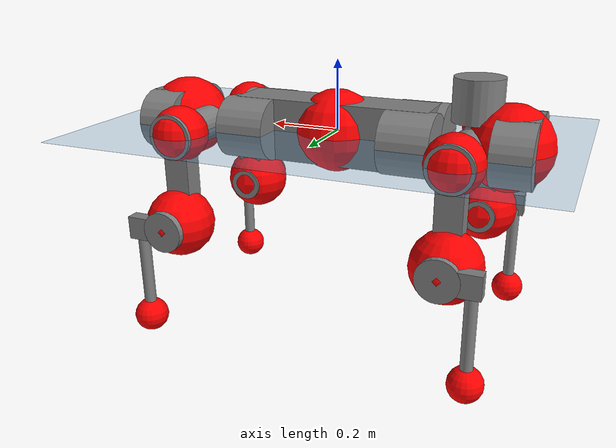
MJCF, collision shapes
<mujoco model="anymal_c">
  <compiler angle="radian" assetdir="assets" balanceinertia="true" inertiafromgeom="false"/>

  <option timestep="0.005" density="1.2" viscosity="2e-05"/>

  <size nkey="1"/>

  <visual>
    <quality shadowsize="8192"/>
    <map shadowclip="0.5"/>
  </visual>

  <default>
    <default class="/">
      <material specular="0" shininess="0.25"/>
      <geom contype="0" conaffinity="0" group="1" solref="-1000 -80"/>
      <site size="0.01 0.005 0.005" group="5"/>
      <general forcelimited="true" forcerange="-80 80" biastype="affine" gainprm="80" biasprm="0 -80 -2"/>
      <default class="anymal_c">
        <joint armature="0.01" damping="0.01" frictionloss="0.1"/>
        <default class="visual">
          <geom type="mesh" group="2"/>
          <default class="visual_zflip"/>
        </default>
        <default class="collision">
          <geom type="cylinder" group="3"/>
          <default class="foot">
            <geom size="0.03 0 0" type="sphere" condim="6" priority="1" friction="0.8 0.02 0.01" solimp="0.015 1 0.03"/>
          </default>
        </default>
      </default>
      <default class="reward_collision_sphere">
        <geom group="5" rgba="1 0 0 1"/>
      </default>
    </default>
  </default>

  <asset>
    <texture type="skybox" colorspace="auto" name="//unnamed_texture_0" builtin="gradient" rgb1="0.95 0.95 0.95" rgb2="0.95 0.95 0.95" width="100" height="600"/>
    <texture type="2d" colorspace="auto" name="texplane" builtin="checker" rgb1="0.345 0.575 0.748" rgb2="0.345 0.575 0.748" markrgb="1 1 1" width="512" height="512"/>
    <texture type="2d" colorspace="linear" name="base" file="base.png"/>
    <texture type="2d" colorspace="linear" name="top_shell" file="top_shell.png"/>
    <texture type="2d" colorspace="linear" name="bottom_shell" file="bottom_shell.png"/>
    <texture type="2d" colorspace="linear" name="remote" file="remote.png"/>
    <texture type="2d" colorspace="linear" name="hatch" file="hatch.png"/>
    <texture type="2d" colorspace="linear" name="handle" file="handle.png"/>
    <texture type="2d" colorspace="linear" name="face" file="face.png"/>
    <texture type="2d" colorspace="linear" name="battery" file="battery.png"/>
    <texture type="2d" colorspace="linear" name="lidar_cage" file="lidar_cage.png"/>
    <texture type="2d" colorspace="linear" name="depth_camera" file="depth_camera.png"/>
    <texture type="2d" colorspace="linear" name="wide_angle_camera" file="wide_angle_camera.png"/>
    <texture type="2d" colorspace="linear" name="lidar" file="lidar.png"/>
    <texture type="2d" colorspace="linear" name="drive" file="drive.png"/>
    <texture type="2d" colorspace="linear" name="hip_l" file="hip_l.png"/>
    <texture type="2d" colorspace="linear" name="shank_l" file="shank_l.png"/>
    <texture type="2d" colorspace="linear" name="foot" file="foot.png"/>
    <texture type="2d" colorspace="linear" name="thigh" file="thigh.png"/>
    <texture type="2d" colorspace="linear" name="shank_r" file="shank_r.png"/>
    <texture type="2d" colorspace="linear" name="hip_r" file="hip_r.png"/>
    <material name="MatPlane" class="/" texture="texplane" texuniform="true" texrepeat="2 2" specular="0.9" shininess="0.5"/>
    <material name="black_plastic" class="/" rgba="0.007 0.007 0.007 1"/>
    <material name="green" class="/" rgba="0.052 0.178 0.033 1"/>
    <material name="red" class="/" rgba="0.178 0.006 0.005 1"/>
    <material name="yellow" class="/" rgba="0.178 0.119 0.006 1"/>
    <material name="lwl" class="/" rgba="0.8 0.8 0.8 1"/>
    <material name="base" class="/" texture="base"/>
    <material name="top_shell" class="/" texture="top_shell"/>
    <material name="bottom_shell" class="/" texture="bottom_shell"/>
    <material name="hip_l" class="/" texture="hip_l"/>
    <material name="thigh" class="/" texture="thigh"/>
    <material name="shank_l" class="/" texture="shank_l"/>
    <material name="foot" class="/" texture="foot"/>
    <material name="hip_r" class="/" texture="hip_r"/>
    <material name="shank" class="/" texture="shank_r"/>
    <material name="hatch" class="/" texture="hatch"/>
    <material name="remote" class="/" texture="remote"/>
    <material name="handle" class="/" texture="handle"/>
    <material name="face" class="/" texture="face"/>
    <material name="depth_camera" class="/" texture="depth_camera"/>
    <material name="wide_angle_camera" class="/" texture="wide_angle_camera"/>
    <material name="battery" class="/" texture="battery"/>
    <material name="lidar_cage" class="/" texture="lidar_cage"/>
    <material name="lidar" class="/" texture="lidar"/>
    <material name="drive" class="/" texture="drive"/>
    <mesh name="base_0" class="/" file="base_0.obj"/>
    <mesh name="base_1" class="/" file="base_1.obj"/>
    <mesh name="base_2" class="/" file="base_2.obj"/>
    <mesh name="base_3" class="/" file="base_3.obj"/>
    <mesh name="base_4" class="/" file="base_4.obj"/>
    <mesh name="base_5" class="/" file="base_5.obj"/>
    <mesh name="top_shell" class="/" file="top_shell.obj"/>
    <mesh name="bottom_shell" class="/" file="bottom_shell.obj"/>
    <mesh name="remote" class="/" file="remote.obj"/>
    <mesh name="handle" class="/" file="handle.obj"/>
    <mesh name="face" class="/" file="face.obj"/>
    <mesh name="wide_angle_camera" class="/" file="wide_angle_camera.obj"/>
    <mesh name="depth_camera" class="/" file="depth_camera.obj"/>
    <mesh name="battery" class="/" file="battery.obj"/>
    <mesh name="lidar_cage" class="/" file="lidar_cage.obj"/>
    <mesh name="lidar" class="/" file="lidar.obj"/>
    <mesh name="drive" class="/" file="drive.obj"/>
    <mesh name="hip_l" class="/" file="hip_l.obj"/>
    <mesh name="thigh" class="/" file="thigh.obj"/>
    <mesh name="shank_l" class="/" file="shank_l.obj"/>
    <mesh name="foot" class="/" file="foot.obj"/>
    <mesh name="hip_r" class="/" file="hip_r.obj"/>
    <mesh name="hatch" class="/" file="hatch.obj"/>
    <mesh name="shank_r" class="/" file="shank_r.obj"/>
  </asset>

  <worldbody>
    <geom name="floor" class="/" size="100 100 0.125" type="plane" group="0" material="MatPlane"/>
    <light name="toplight_shadow" class="/" pos="0 0 5" dir="0.0990148 0.0990148 -0.990148" type="directional" ambient="0.04 0.04 0.04" diffuse="0.55 0.55 0.55" specular="0.12 0.12 0.12"/>
    <light name="toplight_fill" class="/" pos="0 0 5" dir="0.0990148 0.0990148 -0.990148" type="directional" castshadow="false" ambient="0.04 0.04 0.04" diffuse="0.3 0.3 0.3" specular="0.08 0.08 0.08"/>
    <body name="trunk" childclass="anymal_c" pos="0.00260488 -0.000507175 -0.000404848" quat="1 4.21469e-05 -0.000520777 0.000103916">
      <inertial pos="0.00263345 0.000641634 0.043899" quat="0.500747 0.498127 0.501604 0.499515" mass="17.6261" diaginertia="1.03274 0.468039 0.127409"/>
      <joint name="//unnamed_joint_0" type="free" armature="0" damping="0" frictionloss="0"/>
      <geom name="//unnamed_geom_1" class="visual" material="green" mesh="base_0"/>
      <geom name="//unnamed_geom_2" class="visual" material="yellow" mesh="base_1"/>
      <geom name="//unnamed_geom_3" class="visual" material="red" mesh="base_2"/>
      <geom name="//unnamed_geom_4" class="visual" material="black_plastic" mesh="base_3"/>
      <geom name="//unnamed_geom_5" class="visual" material="lwl" mesh="base_4"/>
      <geom name="//unnamed_geom_6" class="visual" material="base" mesh="base_5"/>
      <geom name="trunk_1" class="collision" size="0.282635 0.0682222 0.0877142" type="box"/>
      <geom name="trunk_2" class="collision" size="0.0877142 0.0706587" pos="0.23655 0.0656045 0" quat="0.707107 0 0.707107 0"/>
      <geom name="trunk_3" class="collision" size="0.0877142 0.0706587" pos="-0.23655 0.0656045 0" quat="0.707107 0 0.707107 0"/>
      <geom name="trunk_4" class="collision" size="0.0877142 0.0706587" pos="0.23655 -0.0656045 0" quat="0.707107 0 0.707107 0"/>
      <geom name="trunk_5" class="collision" size="0.0877142 0.0706587" pos="-0.23655 -0.0656045 0" quat="0.707107 0 0.707107 0"/>
      <geom name="//unnamed_geom_12" class="visual" material="top_shell" mesh="top_shell"/>
      <geom name="//unnamed_geom_13" class="visual" material="bottom_shell" mesh="bottom_shell"/>
      <geom name="//unnamed_geom_14" class="visual" material="remote" mesh="remote"/>
      <geom name="//unnamed_geom_15" class="visual" material="handle" mesh="handle"/>
      <geom name="//unnamed_geom_16" class="visual" pos="0.450804 0 0" quat="1 0 0 0" material="face" mesh="face"/>
      <geom name="trunk_6" class="collision" size="0.0536031 0.0682222 0.0877142" pos="0.510621 0 0" type="box"/>
      <geom name="//unnamed_geom_18" class="collision" size="0.0877142 0.0536031" pos="0.510621 0.0656045 0" quat="0.707107 0 0.707107 0"/>
      <geom name="//unnamed_geom_19" class="collision" size="0.0877142 0.0536031" pos="0.510621 -0.0656045 0" quat="0.707107 0 0.707107 0"/>
      <geom name="//unnamed_geom_20" class="visual" pos="0.502076 0 -0.0248181" quat="0.965926 0 0.258819 0" material="depth_camera" mesh="depth_camera"/>
      <geom name="//unnamed_geom_21" class="visual" pos="0.557931 0 0.0134583" material="wide_angle_camera" mesh="wide_angle_camera"/>
      <geom name="//unnamed_geom_22" class="visual_zflip" pos="-0.450804 0 0" quat="0 0 0 1" material="face" mesh="face"/>
      <geom name="trunk_7" class="collision" size="0.0536031 0.0682222 0.0877142" pos="-0.510621 0 0" quat="0 0 0 1" type="box"/>
      <geom name="//unnamed_geom_24" class="collision" size="0.0877142 0.0536031" pos="-0.510621 -0.0656045 0" quat="0 -0.707107 0 0.707107"/>
      <geom name="//unnamed_geom_25" class="collision" size="0.0877142 0.0536031" pos="-0.510621 0.0656045 0" quat="0 -0.707107 0 0.707107"/>
      <geom name="//unnamed_geom_26" class="visual" pos="-0.502076 0 -0.0248181" quat="0 -0.258819 0 0.965926" material="depth_camera" mesh="depth_camera"/>
      <geom name="//unnamed_geom_27" class="visual_zflip" pos="-0.557931 0 0.0134583" quat="0 0 0 1" material="wide_angle_camera" mesh="wide_angle_camera"/>
      <geom name="//unnamed_geom_28" class="visual" material="battery" mesh="battery"/>
      <geom name="//unnamed_geom_29" class="visual" pos="0 0.0696777 0.0275495" quat="0.683013 -0.183013 0.183013 0.683013" material="depth_camera" mesh="depth_camera"/>
      <geom name="//unnamed_geom_30" class="visual" pos="0 -0.0696777 0.0275495" quat="0.683013 0.183013 0.183013 -0.683013" material="depth_camera" mesh="depth_camera"/>
      <geom name="//unnamed_geom_31" class="visual" pos="-0.395881 0 0.0660777" quat="1 0 0 0" material="lidar_cage" mesh="lidar_cage"/>
      <geom name="trunk_8" class="collision" size="0.0682222 0.0584762" pos="-0.395881 0 0.120019"/>
      <geom name="//unnamed_geom_33" class="visual" pos="-0.395881 -5.90796e-05 0.12784" quat="0.707107 0 0 -0.707107" material="lidar" mesh="lidar"/>
      <geom name="//unnamed_geom_34" class="visual" pos="0.326167 0.0974559 6.58795e-10" quat="0.258819 0.965926 0 0" material="drive" mesh="drive"/>
      <geom name="//unnamed_geom_35" class="visual" pos="0.326167 -0.0974559 -6.58795e-10" quat="0.258819 -0.965926 0 0" material="drive" mesh="drive"/>
      <geom name="//unnamed_geom_36" class="visual" pos="-0.326167 0.0974559 -6.58795e-10" quat="0 0 0.965926 -0.258819" material="drive" mesh="drive"/>
      <geom name="//unnamed_geom_37" class="visual" pos="-0.326167 -0.0974559 6.58795e-10" quat="0 0 -0.965926 -0.258819" material="drive" mesh="drive"/>
      <geom name="//unnamed_geom_38" class="visual" pos="0.12616 0 0.0656282" quat="1 0 0 0" material="hatch" mesh="hatch"/>
      <geom name="//unnamed_geom_39" class="reward_collision_sphere" size="0.116952"/>
      <geom name="//unnamed_geom_40" class="reward_collision_sphere" size="0.116952" pos="0.489413 0 0"/>
      <geom name="//unnamed_geom_41" class="reward_collision_sphere" size="0.116952" pos="-0.489413 0 0"/>
      <site name="imu" pos="0.265319 0.0098666 0.0280713" size="0.00974603"/>
      <camera name="track" pos="0 -1.87441 0" quat="0.707107 0.707107 0 0" mode="trackcom"/>
      <camera name="ego_camera" pos="0.489413 0 -0.0359606" quat="-0.5 -0.5 0.5 0.5"/>
      <body name="LF_HIP" pos="0.325863 0.0980222 -0.000620646" quat="0.259524 0.965736 -0.000839096 0.000365975">
        <inertial pos="0.0589876 -0.0135358 -0.00710695" quat="-0.127927 0.708995 -0.13425 0.680395" mass="2.58946" diaginertia="0.00896099 0.0034519 0.00192488"/>
        <joint name="LF_HAA" pos="0 0 0" axis="0.999896 -0.00938726 0.0109162" range="-0.725067 0.487333" armature="0.00843342" damping="0.00531801" frictionloss="0.0984627"/>
        <geom name="//unnamed_geom_42" class="visual" pos="0 3.87539e-05 -6.3653e-06" quat="0.258819 -0.965926 0 0" material="hip_l" mesh="hip_l"/>
        <geom name="//unnamed_geom_43" class="visual" pos="0.0651464 -0.0769451 -0.0441418" quat="0.183013 -0.683013 0.683013 0.183013" material="drive" mesh="drive"/>
        <geom name="//unnamed_geom_44" class="collision" size="0.0487301 0.0682222" pos="0.0651463 -0.0112088 -0.00620771" quat="-0.353553 -0.612372 0.612372 -0.353553"/>
        <body name="LF_THIGH" pos="0.0645174 -0.0674726 -0.0386907" quat="0.183057 -0.682976 0.683026 0.183056">
          <inertial pos="0.0332416 0.000230493 -0.223469" quat="0.993168 -0.00508112 -0.0808916 0.0839512" mass="2.89033" diaginertia="0.0467193 0.0218352 0.00246917"/>
          <joint name="LF_HFE" pos="0 0 0" axis="0.999993 -0.00341801 0.00116099" range="-3.15343 3.13695" armature="0.0110047" damping="0.00462881" frictionloss="0.0933666"/>
          <geom name="//unnamed_geom_45" class="visual" pos="0.00299194 4.71459e-06 0" quat="0.707107 0 0 -0.707107" material="thigh" mesh="thigh"/>
          <geom name="//unnamed_geom_46" class="collision" size="0.0633492 0.0389841" pos="0.0435034 0 0" quat="0.5 0.5 -0.5 -0.5"/>
          <geom name="//unnamed_geom_47" class="collision" size="0.0365476 0.0292381 0.137725" pos="0.0326276 0 -0.127044" quat="0.707107 0 0 -0.707107" type="box"/>
          <geom name="//unnamed_geom_48" class="visual" pos="0.109085 0 -0.25622" quat="1 0 0 0" material="drive" mesh="drive"/>
          <geom name="//unnamed_geom_49" class="collision" size="0.0487301 0.0682222" pos="0.0329538 0 -0.25622" quat="0.707107 0 0.707107 0"/>
          <geom name="//unnamed_geom_50" class="reward_collision_sphere" size="0.0779682" pos="0.0271896 0 0"/>
          <body name="LF_SHANK" pos="0.109143 -0.0030113 -0.255356" quat="1 -0.000344601 0.000666919 0.000329155">
            <inertial pos="0.00609196 -0.0563638 -0.0725959" quat="0.993878 -0.107182 -0.0112247 -0.0243449" mass="0.559375" diaginertia="0.0152705 0.00674139 0.000645802"/>
            <joint name="LF_KFE" pos="0 0 0" axis="0.999992 0.00339617 -0.00196584" range="-3.14527 3.15319" armature="0.00973856" damping="0" frictionloss="0.0980617"/>
            <geom name="//unnamed_geom_51" class="visual" pos="0.000975605 0.00520198 0" quat="0.707107 0 0 -0.707107" material="shank_l" mesh="shank_l"/>
            <geom name="LF_kfe_act" class="collision" size="0.0584762 0.0194921" pos="0.0217517 0 0" quat="0.5 0.5 -0.5 -0.5"/>
            <geom name="//unnamed_geom_53" class="collision" size="0.0560387 0.0328928 0.0185175" pos="0.0217517 -0.0538885 0" quat="0.5 0.5 -0.5 -0.5" type="box"/>
            <geom name="//unnamed_geom_54" class="visual" pos="0.0141927 -0.080751 -0.30384" quat="0.382683 0 0 -0.92388" material="foot" mesh="foot"/>
            <geom name="LF_calf" class="collision" size="0.0170555 0.137665" pos="0.014193 -0.0824273 -0.15192" quat="0.707107 0 0 -0.707107"/>
            <geom name="LF_foot" class="foot" size="0.0311632" pos="0.014193 -0.0824273 -0.283613" quat="0.707107 0 0 -0.707107"/>
            <geom name="//unnamed_geom_57" class="reward_collision_sphere" size="0.0974603" pos="-0.0543793 0 0"/>
            <geom name="//unnamed_geom_58" class="reward_collision_sphere" size="0.0487301" pos="0.014193 -0.0824273 -0.283613"/>
            <site name="LF_foot" class="foot" pos="0.014193 -0.0824273 -0.283613" quat="0.707107 0 0 -0.707107" size="0.00974603"/>
          </body>
        </body>
      </body>
      <body name="RF_HIP" pos="0.323879 -0.0954965 -0.0014425" quat="0.25849 -0.966014 -0.000147326 0.000195112">
        <inertial pos="0.064446 0.0137299 -0.01019" quat="0.132705 0.678051 0.13293 0.71061" mass="2.64501" diaginertia="0.00915692 0.00361139 0.00199994"/>
        <joint name="RF_HAA" pos="0 0 0" axis="0.999892 0.0103941 -0.0104234" range="-0.547023 0.71573" armature="0.00959367" damping="0.00865741" frictionloss="0.0857224"/>
        <geom name="//unnamed_geom_59" class="visual" pos="0 -3.87536e-05 -6.36528e-06" quat="0.258819 0.965926 0 0" material="hip_r" mesh="hip_r"/>
        <geom name="//unnamed_geom_60" class="visual" pos="0.0651463 0.0769451 -0.0441418" quat="0.183013 0.683013 0.683013 -0.183013" material="drive" mesh="drive"/>
        <geom name="//unnamed_geom_61" class="collision" size="0.0487301 0.0682222" pos="0.0651463 0.0112088 -0.00620771" quat="-0.353553 0.612372 0.612372 0.353553"/>
        <body name="RF_THIGH" pos="0.065224 0.0684257 -0.0373448" quat="0.183027 0.683029 0.682941 -0.183205">
          <inertial pos="0.0332597 0.00247391 -0.221559" quat="0.992643 -0.00538488 -0.081355 0.0895083" mass="2.8133" diaginertia="0.0461393 0.0212048 0.00242931"/>
          <joint name="RF_HFE" pos="0 0 0" axis="1 0.000594408 -8.47128e-05" stiffness="0.00208533" range="-3.13616 3.14619" armature="0.0103053" damping="0" frictionloss="0.0931745"/>
          <geom name="//unnamed_geom_62" class="visual" pos="0.00299194 4.71459e-06 0" quat="0.707107 0 0 -0.707107" material="thigh" mesh="thigh"/>
          <geom name="//unnamed_geom_63" class="collision" size="0.0633492 0.0389841" pos="0.0435034 0 0" quat="0.5 0.5 0.5 0.5"/>
          <geom name="//unnamed_geom_64" class="collision" size="0.0365476 0.0292381 0.137725" pos="0.0326276 0 -0.127044" quat="0.707107 0 0 0.707107" type="box"/>
          <geom name="//unnamed_geom_65" class="visual" pos="0.109085 0 -0.25622" quat="1 0 0 0" material="drive" mesh="drive"/>
          <geom name="//unnamed_geom_66" class="collision" size="0.0487301 0.0682222" pos="0.0329538 0 -0.25622" quat="0.707107 0 0.707107 0"/>
          <geom name="//unnamed_geom_67" class="reward_collision_sphere" size="0.0779682" pos="0.0271896 0 0"/>
          <body name="RF_SHANK" pos="0.109647 -0.000853486 -0.25327" quat="0.999999 -0.00116098 -0.000166632 -0.000688583">
            <inertial pos="0.00862674 0.056033 -0.069881" quat="0.992788 0.117114 -0.00491837 0.0251493" mass="0.532014" diaginertia="0.0156521 0.00693766 0.000684302"/>
            <joint name="RF_KFE" pos="0 0 0" axis="0.999994 -0.00270917 -0.00191566" stiffness="0.00206582" range="-3.1895 3.128" armature="0.00951548" damping="0.0209473" frictionloss="0.109961"/>
            <geom name="//unnamed_geom_68" class="visual" pos="0.0009756 -0.00520197 0" quat="0.707107 0 0 0.707107" material="shank" mesh="shank_r"/>
            <geom name="RF_kfe_act" class="collision" size="0.0584762 0.0194921" pos="0.0217517 0 0" quat="0.5 0.5 0.5 0.5"/>
            <geom name="//unnamed_geom_70" class="collision" size="0.0560387 0.0328928 0.0185175" pos="0.0217517 0.0538885 0" quat="0.5 0.5 0.5 0.5" type="box"/>
            <geom name="//unnamed_geom_71" class="visual" pos="0.0141932 0.080751 -0.30384" quat="0.382683 0 0 0.92388" material="foot" mesh="foot"/>
            <geom name="RF_calf" class="collision" size="0.0170555 0.137665" pos="0.014193 0.0824273 -0.15192" quat="0.707107 0 0 0.707107"/>
            <geom name="RF_foot" class="foot" size="0.0298987" pos="0.014193 0.0824273 -0.283613" quat="0.707107 0 0 0.707107"/>
            <geom name="//unnamed_geom_74" class="reward_collision_sphere" size="0.0974603" pos="-0.0543793 0 0"/>
            <geom name="//unnamed_geom_75" class="reward_collision_sphere" size="0.0487301" pos="0.014193 0.0824273 -0.283613"/>
            <site name="RF_foot" class="foot" pos="0.014193 0.0824273 -0.283613" quat="0.707107 0 0 0.707107" size="0.00974603"/>
          </body>
        </body>
      </body>
      <body name="LH_HIP" pos="-0.323183 0.0953427 0.000968656" quat="0.000497742 -5.83783e-06 0.965839 -0.259143">
        <inertial pos="0.0644751 0.0115629 -0.00784516" quat="0.137074 0.677627 0.140351 0.708755" mass="2.57813" diaginertia="0.00907055 0.00358193 0.00188002"/>
        <joint name="LH_HAA" pos="0 0 0" axis="0.999997 -0.000280269 0.00243573" range="-0.462557 0.714122" armature="0.00971337" damping="0.0102913" frictionloss="0.101358"/>
        <geom name="//unnamed_geom_76" class="visual" pos="0 -3.87536e-05 -6.36528e-06" quat="-0.258819 -0.965926 0 0" material="hip_r" mesh="hip_r"/>
        <geom name="//unnamed_geom_77" class="visual" pos="0.0651463 0.0769451 -0.0441418" quat="0.183013 0.683013 0.683013 -0.183013" material="drive" mesh="drive"/>
        <geom name="//unnamed_geom_78" class="collision" size="0.0487301 0.0682222" pos="0.0651463 0.0112088 -0.00620771" quat="-0.353553 0.612372 0.612372 0.353553"/>
        <body name="LH_THIGH" pos="0.0649654 0.0679967 -0.0377846" quat="0.183036 0.683002 0.683039 -0.18293">
          <inertial pos="0.032612 0.00260462 -0.220171" quat="0.992364 -0.00591793 -0.0901145 0.0840148" mass="2.87079" diaginertia="0.0461538 0.0222431 0.00242972"/>
          <joint name="LH_HFE" pos="0 0 0" axis="0.999923 -0.0112782 -0.00511097" range="-3.1098 3.16506" armature="0.0110858" damping="0.00533767" frictionloss="0.10934"/>
          <geom name="//unnamed_geom_79" class="visual" pos="0.00299194 4.71459e-06 0" quat="0.707107 0 0 -0.707107" material="thigh" mesh="thigh"/>
          <geom name="//unnamed_geom_80" class="collision" size="0.0633492 0.0389841" pos="0.0435034 0 0" quat="0.5 0.5 -0.5 -0.5"/>
          <geom name="//unnamed_geom_81" class="collision" size="0.0365476 0.0292381 0.137725" pos="0.0326276 0 -0.127044" quat="0.707107 0 0 -0.707107" type="box"/>
          <geom name="//unnamed_geom_82" class="visual" pos="0.109085 0 -0.25622" quat="1 0 0 0" material="drive" mesh="drive"/>
          <geom name="//unnamed_geom_83" class="collision" size="0.0487301 0.0682222" pos="0.0329538 0 -0.25622" quat="0.707107 0 0.707107 0"/>
          <geom name="//unnamed_geom_84" class="reward_collision_sphere" size="0.0779682" pos="0.0271896 0 0"/>
          <body name="LH_SHANK" pos="0.108277 0.00159513 -0.259215" quat="0.999999 0.00100826 -0.00101465 7.23186e-05">
            <inertial pos="0.00600908 0.0573974 -0.0699353" quat="0.993243 0.113676 -0.000285994 0.023358" mass="0.524418" diaginertia="0.0153293 0.00665587 0.00065781"/>
            <joint name="LH_KFE" pos="0 0 0" axis="0.999989 -0.00458624 3.21852e-05" range="-3.16242 3.11394" armature="0.00920957" damping="0.00828901" frictionloss="0.0869378"/>
            <geom name="//unnamed_geom_85" class="visual" pos="0.0009756 -0.00520197 0" quat="-0.707107 0 0 -0.707107" material="shank" mesh="shank_r"/>
            <geom name="LH_kfe_act" class="collision" size="0.0584762 0.0194921" pos="0.0217517 0 0" quat="0.5 0.5 -0.5 -0.5"/>
            <geom name="//unnamed_geom_87" class="collision" size="0.0560387 0.0328928 0.0185175" pos="0.0217517 0.0538885 0" quat="0.5 0.5 -0.5 -0.5" type="box"/>
            <geom name="//unnamed_geom_88" class="visual" pos="0.0141932 0.080751 -0.30384" quat="-0.382683 0 0 -0.92388" material="foot" mesh="foot"/>
            <geom name="LH_calf" class="collision" size="0.0170555 0.137665" pos="0.014193 0.0824273 -0.15192" quat="0.707107 0 0 -0.707107"/>
            <geom name="LH_foot" class="foot" size="0.0276756" pos="0.014193 0.0824273 -0.283613" quat="0.707107 0 0 -0.707107"/>
            <geom name="//unnamed_geom_91" class="reward_collision_sphere" size="0.0974603" pos="-0.0543793 0 0"/>
            <geom name="//unnamed_geom_92" class="reward_collision_sphere" size="0.0487301" pos="0.014193 0.0824273 -0.283613"/>
            <site name="LH_foot" class="foot" pos="0.014193 0.0824273 -0.283613" quat="0.707107 0 0 -0.707107" size="0.00974603"/>
          </body>
        </body>
      </body>
      <body name="RH_HIP" pos="-0.328735 -0.0981733 0.000576729" quat="0.000133865 0.000328728 -0.965966 -0.25867">
        <inertial pos="0.0635183 -0.0139681 -0.00775894" quat="-0.133127 0.708628 -0.147527 0.677022" mass="2.5955" diaginertia="0.00910282 0.00365691 0.00198216"/>
        <joint name="RH_HAA" pos="0 0 0" axis="0.999897 0.00666177 -0.0127092" stiffness="0.00091529" range="-0.718448 0.476076" armature="0.0100213" damping="0.0117868" frictionloss="0.0987272"/>
        <geom name="//unnamed_geom_93" class="visual" pos="0 3.87539e-05 -6.3653e-06" quat="-0.258819 0.965926 0 0" material="hip_l" mesh="hip_l"/>
        <geom name="//unnamed_geom_94" class="visual" pos="0.0651464 -0.0769451 -0.0441418" quat="-0.183013 0.683013 -0.683013 -0.183013" material="drive" mesh="drive"/>
        <geom name="//unnamed_geom_95" class="collision" size="0.0487301 0.0682222" pos="0.0651463 -0.0112088 -0.00620771" quat="0.353553 0.612372 -0.612372 0.353553"/>
        <body name="RH_THIGH" pos="0.0642889 -0.0673418 -0.0352931" quat="-0.182795 0.682887 -0.68321 -0.182963">
          <inertial pos="0.032646 -0.000311085 -0.221602" quat="0.994089 -0.0106766 -0.0803274 0.0722473" mass="2.8759" diaginertia="0.0456386 0.0222216 0.00253392"/>
          <joint name="RH_HFE" pos="0 0 0" axis="0.999993 -0.000943825 -0.00365185" range="-3.13975 3.13274" armature="0.010805" damping="0" frictionloss="0.0960505"/>
          <geom name="//unnamed_geom_96" class="visual" pos="0.00299194 4.71459e-06 0" quat="0.707107 0 0 -0.707107" material="thigh" mesh="thigh"/>
          <geom name="//unnamed_geom_97" class="collision" size="0.0633492 0.0389841" pos="0.0435034 0 0" quat="0.5 0.5 0.5 0.5"/>
          <geom name="//unnamed_geom_98" class="collision" size="0.0365476 0.0292381 0.137725" pos="0.0326276 0 -0.127044" quat="0.707107 0 0 0.707107" type="box"/>
          <geom name="//unnamed_geom_99" class="visual" pos="0.109085 0 -0.25622" quat="1 0 0 0" material="drive" mesh="drive"/>
          <geom name="//unnamed_geom_100" class="collision" size="0.0487301 0.0682222" pos="0.0329538 0 -0.25622" quat="0.707107 0 0.707107 0"/>
          <geom name="//unnamed_geom_101" class="reward_collision_sphere" size="0.0779682" pos="0.0271896 0 0"/>
          <body name="RH_SHANK" pos="0.109288 -5.4923e-05 -0.255912" quat="1 0.000169282 -0.000170984 3.49792e-06">
            <inertial pos="0.00345684 -0.0599931 -0.069873" quat="0.993132 -0.114519 0.000451276 -0.0239782" mass="0.56058" diaginertia="0.0151535 0.00688075 0.000657033"/>
            <joint name="RH_KFE" pos="0 0 0" axis="0.999983 0.00403212 -0.00427632" stiffness="1.65484e-05" range="-3.1085 3.18966" armature="0.00981773" damping="0.00392489" frictionloss="0.110657"/>
            <geom name="//unnamed_geom_102" class="visual" pos="0.000975605 0.00520198 0" quat="0.707107 0 0 -0.707107" material="shank_l" mesh="shank_l"/>
            <geom name="RH_kfe_act" class="collision" size="0.0584762 0.0194921" pos="0.0217517 0 0" quat="0.5 0.5 0.5 0.5"/>
            <geom name="//unnamed_geom_104" class="collision" size="0.0560387 0.0328928 0.0185175" pos="0.0217517 -0.0538885 0" quat="0.5 0.5 0.5 0.5" type="box"/>
            <geom name="//unnamed_geom_105" class="visual" pos="0.0141927 -0.080751 -0.30384" quat="0.382683 0 0 -0.92388" material="foot" mesh="foot"/>
            <geom name="RH_calf" class="collision" size="0.0170555 0.137665" pos="0.014193 -0.0824273 -0.15192" quat="0.707107 0 0 0.707107"/>
            <geom name="RH_foot" class="foot" size="0.0299214" pos="0.014193 -0.0824273 -0.283613" quat="0.707107 0 0 0.707107"/>
            <geom name="//unnamed_geom_108" class="reward_collision_sphere" size="0.0974603" pos="-0.0543793 0 0"/>
            <geom name="//unnamed_geom_109" class="reward_collision_sphere" size="0.0487301" pos="0.014193 -0.0824273 -0.283613"/>
            <site name="RH_foot" class="foot" pos="0.014193 -0.0824273 -0.283613" quat="0.707107 0 0 0.707107" size="0.00974603"/>
          </body>
        </body>
      </body>
    </body>
  </worldbody>

  <contact>
    <pair class="/" geom1="floor" geom2="LF_foot" name="//unnamed_contact_0"/>
    <pair class="/" geom1="floor" geom2="RF_foot" name="//unnamed_contact_1"/>
    <pair class="/" geom1="floor" geom2="LH_foot" name="//unnamed_contact_2"/>
    <pair class="/" geom1="floor" geom2="RH_foot" name="//unnamed_contact_3"/>
  </contact>

  <actuator>
    <general name="LF_HAA" class="/" joint="LF_HAA" forcerange="-79.2858 79.2858" gainprm="78.7934" biasprm="0 -78.7934 -1.95018"/>
    <general name="LF_HFE" class="/" joint="LF_HFE" forcerange="-71.0976 71.0976" gainprm="78.7934" biasprm="0 -78.7934 -1.95018"/>
    <general name="LF_KFE" class="/" joint="LF_KFE" forcerange="-78.0994 78.0994" gainprm="78.7934" biasprm="0 -78.7934 -1.95018"/>
    <general name="RF_HAA" class="/" joint="RF_HAA" forcerange="-77.7406 77.7406" gainprm="78.7934" biasprm="0 -78.7934 -1.95018"/>
    <general name="RF_HFE" class="/" joint="RF_HFE" forcerange="-76.5553 76.5553" gainprm="78.7934" biasprm="0 -78.7934 -1.95018"/>
    <general name="RF_KFE" class="/" joint="RF_KFE" forcerange="-81.4333 81.4333" gainprm="78.7934" biasprm="0 -78.7934 -1.95018"/>
    <general name="LH_HAA" class="/" joint="LH_HAA" forcerange="-79.0393 79.0393" gainprm="78.7934" biasprm="0 -78.7934 -1.95018"/>
    <general name="LH_HFE" class="/" joint="LH_HFE" forcerange="-82.4378 82.4378" gainprm="78.7934" biasprm="0 -78.7934 -1.95018"/>
    <general name="LH_KFE" class="/" joint="LH_KFE" forcerange="-77.5722 77.5722" gainprm="78.7934" biasprm="0 -78.7934 -1.95018"/>
    <general name="RH_HAA" class="/" joint="RH_HAA" forcerange="-77.138 77.138" gainprm="78.7934" biasprm="0 -78.7934 -1.95018"/>
    <general name="RH_HFE" class="/" joint="RH_HFE" forcerange="-75.6939 75.6939" gainprm="78.7934" biasprm="0 -78.7934 -1.95018"/>
    <general name="RH_KFE" class="/" joint="RH_KFE" forcerange="-70.3457 70.3457" gainprm="78.7934" biasprm="0 -78.7934 -1.95018"/>
  </actuator>

  <sensor>
    <gyro site="imu" name="imu_angular_velocity"/>
    <velocimeter site="imu" name="imu_linear_velocity"/>
    <framelinvel objtype="site" objname="LF_foot" name="LF_foot_global_linear_velocity"/>
    <framelinvel objtype="site" objname="RF_foot" name="RF_foot_global_linear_velocity"/>
    <framelinvel objtype="site" objname="LH_foot" name="LH_foot_global_linear_velocity"/>
    <framelinvel objtype="site" objname="RH_foot" name="RH_foot_global_linear_velocity"/>
  </sensor>

  <keyframe>
    <key name="home" qpos="0 0 0.55 1 0 0 0 0 0.4 -0.8 0 -0.4 0.8 0 -0.4 0.8 0 0.4 -0.8"/>
  </keyframe>
</mujoco>
